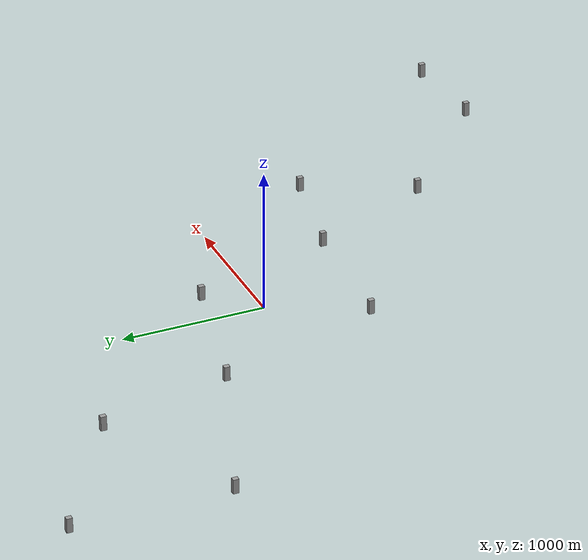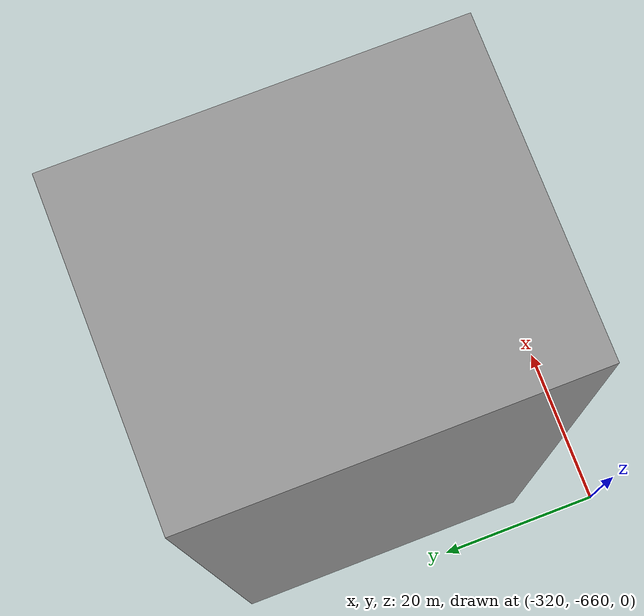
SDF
<sdf version="1.7">
 <world name="default">
  <scene>
   <sky><clouds><speed>12</speed></clouds></sky>
   <ambient>0.95 0.95 0.95 1</ambient>
   <background>0.3 0.3 0.3 1</background>
   <shadows>1</shadows>
  </scene>
  <light name="sun" type="directional">
   <pose>0 0 10 0 -0 0</pose>
   <diffuse>0.8 0.8 0.8 1</diffuse>
   <specular>0.2 0.2 0.2 1</specular>
   <attenuation>
    <range>1000</range>
    <constant>0.9</constant>
    <linear>0.01</linear>
    <quadratic>0.001</quadratic>
   </attenuation>
   <direction>-0.5 0.1 -0.9</direction>
   <spot><inner_angle>0</inner_angle><outer_angle>0</outer_angle><falloff>0</falloff></spot>
  </light>
  <spherical_coordinates>
   <surface_model>EARTH_WGS84</surface_model>
   <latitude_deg>35.7223</latitude_deg>
   <longitude_deg>-120.767</longitude_deg>
   <elevation>280</elevation>
   <heading_deg>0</heading_deg>
  </spherical_coordinates>
  <physics name="default_physics" default="0" type="ode">
   <ode>
    <solver>
     <type>quick</type>
     <iters>10</iters>
     <sor>1.3</sor>
     <use_dynamic_moi_rescaling>0</use_dynamic_moi_rescaling>
    </solver>
    <constraints>
     <cfm>0</cfm>
     <erp>0.2</erp>
     <contact_max_correcting_vel>100</contact_max_correcting_vel>
     <contact_surface_layer>0.001</contact_surface_layer>
    </constraints>
   </ode>
   <max_step_size>0.004</max_step_size>
   <real_time_factor>1</real_time_factor>
   <real_time_update_rate>250</real_time_update_rate>
  </physics>
  <gravity>0 0 -9.8066</gravity>
  <magnetic_field>6e-06 2.3e-05 -4.2e-05</magnetic_field>
  <atmosphere type="adiabatic"/>
  <audio><device>default</device></audio>
  <model name="huge_building">
   <link name="link">
    <inertial>
     <mass>137299</mass>
     <inertia>
      <ixx>1.37911e+08</ixx>
      <ixy>0</ixy>
      <ixz>0</ixz>
      <iyy>1.32035e+08</iyy>
      <iyz>0</iyz>
      <izz>3.13216e+07</izz>
     </inertia>
    </inertial>
    <visual name="visual">
     <geometry><box><size>33.3468 40.3177 102.117</size></box></geometry>
     <material>
      <script><name>Gazebo/Grey</name><uri>file://media/materials/scripts/gazebo.material</uri></script>
      <shader type="pixel"/>
     </material>
    </visual>
    <collision name="collision">
     <geometry><box><size>33.3468 40.3177 102.117</size></box></geometry>
     <surface>
      <friction>
       <ode><mu>1</mu><mu2>1</mu2><fdir1>0 0 0</fdir1><slip1>0</slip1><slip2>0</slip2></ode>
       <torsional>
        <coefficient>1</coefficient>
        <patch_radius>0</patch_radius>
        <surface_radius>0</surface_radius>
        <use_patch_radius>1</use_patch_radius>
        <ode><slip>0</slip></ode>
       </torsional>
      </friction>
      <bounce><restitution_coefficient>0</restitution_coefficient><threshold>1e+06</threshold></bounce>
      <contact>
       <collide_without_contact>0</collide_without_contact>
       <collide_without_contact_bitmask>1</collide_without_contact_bitmask>
       <collide_bitmask>1</collide_bitmask>
       <ode>
        <soft_cfm>0</soft_cfm>
        <soft_erp>0.2</soft_erp>
        <kp>1e+13</kp>
        <kd>1</kd>
        <max_vel>0.01</max_vel>
        <min_depth>0</min_depth>
       </ode>
       <bullet>
        <split_impulse>1</split_impulse>
        <split_impulse_penetration_threshold>-0.01</split_impulse_penetration_threshold>
        <soft_cfm>0</soft_cfm>
        <soft_erp>0.2</soft_erp>
        <kp>1e+13</kp>
        <kd>1</kd>
       </bullet>
      </contact>
     </surface>
    </collision>
   </link>
   <static>0</static>
   <pose>2573.26 -2347.73 0.5 0 -0 0</pose>
  </model>
  <model name="huge_building_0">
   <link name="link">
    <inertial>
     <mass>137299</mass>
     <inertia>
      <ixx>1.37911e+08</ixx>
      <ixy>0</ixy>
      <ixz>0</ixz>
      <iyy>1.32035e+08</iyy>
      <iyz>0</iyz>
      <izz>3.13216e+07</izz>
     </inertia>
    </inertial>
    <visual name="visual">
     <geometry><box><size>33.3468 40.3177 102.117</size></box></geometry>
     <material>
      <script><name>Gazebo/Grey</name><uri>file://media/materials/scripts/gazebo.material</uri></script>
      <shader type="pixel"/>
     </material>
    </visual>
    <collision name="collision">
     <geometry><box><size>33.3468 40.3177 102.117</size></box></geometry>
     <surface>
      <friction>
       <ode><mu>1</mu><mu2>1</mu2><fdir1>0 0 0</fdir1><slip1>0</slip1><slip2>0</slip2></ode>
       <torsional>
        <coefficient>1</coefficient>
        <patch_radius>0</patch_radius>
        <surface_radius>0</surface_radius>
        <use_patch_radius>1</use_patch_radius>
        <ode><slip>0</slip></ode>
       </torsional>
      </friction>
      <bounce><restitution_coefficient>0</restitution_coefficient><threshold>1e+06</threshold></bounce>
      <contact>
       <collide_without_contact>0</collide_without_contact>
       <collide_without_contact_bitmask>1</collide_without_contact_bitmask>
       <collide_bitmask>1</collide_bitmask>
       <ode>
        <soft_cfm>0</soft_cfm>
        <soft_erp>0.2</soft_erp>
        <kp>1e+13</kp>
        <kd>1</kd>
        <max_vel>0.01</max_vel>
        <min_depth>0</min_depth>
       </ode>
       <bullet>
        <split_impulse>1</split_impulse>
        <split_impulse_penetration_threshold>-0.01</split_impulse_penetration_threshold>
        <soft_cfm>0</soft_cfm>
        <soft_erp>0.2</soft_erp>
        <kp>1e+13</kp>
        <kd>1</kd>
       </bullet>
      </contact>
     </surface>
    </collision>
   </link>
   <static>0</static>
   <pose>1927.83 -2388.05 0 0 -0 0</pose>
  </model>
  <model name="huge_building_1">
   <link name="link">
    <inertial>
     <mass>137299</mass>
     <inertia>
      <ixx>1.37911e+08</ixx>
      <ixy>0</ixy>
      <ixz>0</ixz>
      <iyy>1.32035e+08</iyy>
      <iyz>0</iyz>
      <izz>3.13216e+07</izz>
     </inertia>
    </inertial>
    <visual name="visual">
     <geometry><box><size>33.3468 40.3177 102.117</size></box></geometry>
     <material>
      <script><name>Gazebo/Grey</name><uri>file://media/materials/scripts/gazebo.material</uri></script>
      <shader type="pixel"/>
     </material>
    </visual>
    <collision name="collision">
     <geometry><box><size>33.3468 40.3177 102.117</size></box></geometry>
     <surface>
      <friction>
       <ode><mu>1</mu><mu2>1</mu2><fdir1>0 0 0</fdir1><slip1>0</slip1><slip2>0</slip2></ode>
       <torsional>
        <coefficient>1</coefficient>
        <patch_radius>0</patch_radius>
        <surface_radius>0</surface_radius>
        <use_patch_radius>1</use_patch_radius>
        <ode><slip>0</slip></ode>
       </torsional>
      </friction>
      <bounce><restitution_coefficient>0</restitution_coefficient><threshold>1e+06</threshold></bounce>
      <contact>
       <collide_without_contact>0</collide_without_contact>
       <collide_without_contact_bitmask>1</collide_without_contact_bitmask>
       <collide_bitmask>1</collide_bitmask>
       <ode>
        <soft_cfm>0</soft_cfm>
        <soft_erp>0.2</soft_erp>
        <kp>1e+13</kp>
        <kd>1</kd>
        <max_vel>0.01</max_vel>
        <min_depth>0</min_depth>
       </ode>
       <bullet>
        <split_impulse>1</split_impulse>
        <split_impulse_penetration_threshold>-0.01</split_impulse_penetration_threshold>
        <soft_cfm>0</soft_cfm>
        <soft_erp>0.2</soft_erp>
        <kp>1e+13</kp>
        <kd>1</kd>
       </bullet>
      </contact>
     </surface>
    </collision>
   </link>
   <static>0</static>
   <pose>1025.33 -1589.03 27 0 -0 0</pose>
  </model>
  <model name="huge_building_2">
   <link name="link">
    <inertial>
     <mass>137299</mass>
     <inertia>
      <ixx>1.37911e+08</ixx>
      <ixy>0</ixy>
      <ixz>0</ixz>
      <iyy>1.32035e+08</iyy>
      <iyz>0</iyz>
      <izz>3.13216e+07</izz>
     </inertia>
    </inertial>
    <visual name="visual">
     <geometry><box><size>33.3468 40.3177 102.117</size></box></geometry>
     <material>
      <script><name>Gazebo/Grey</name><uri>file://media/materials/scripts/gazebo.material</uri></script>
      <shader type="pixel"/>
     </material>
    </visual>
    <collision name="collision">
     <geometry><box><size>33.3468 40.3177 102.117</size></box></geometry>
     <surface>
      <friction>
       <ode><mu>1</mu><mu2>1</mu2><fdir1>0 0 0</fdir1><slip1>0</slip1><slip2>0</slip2></ode>
       <torsional>
        <coefficient>1</coefficient>
        <patch_radius>0</patch_radius>
        <surface_radius>0</surface_radius>
        <use_patch_radius>1</use_patch_radius>
        <ode><slip>0</slip></ode>
       </torsional>
      </friction>
      <bounce><restitution_coefficient>0</restitution_coefficient><threshold>1e+06</threshold></bounce>
      <contact>
       <collide_without_contact>0</collide_without_contact>
       <collide_without_contact_bitmask>1</collide_without_contact_bitmask>
       <collide_bitmask>1</collide_bitmask>
       <ode>
        <soft_cfm>0</soft_cfm>
        <soft_erp>0.2</soft_erp>
        <kp>1e+13</kp>
        <kd>1</kd>
        <max_vel>0.01</max_vel>
        <min_depth>0</min_depth>
       </ode>
       <bullet>
        <split_impulse>1</split_impulse>
        <split_impulse_penetration_threshold>-0.01</split_impulse_penetration_threshold>
        <soft_cfm>0</soft_cfm>
        <soft_erp>0.2</soft_erp>
        <kp>1e+13</kp>
        <kd>1</kd>
       </bullet>
      </contact>
     </surface>
    </collision>
   </link>
   <static>0</static>
   <pose>1380.82 -867.37 23 0 -0 0</pose>
  </model>
  <model name="huge_building_3">
   <link name="link">
    <inertial>
     <mass>137299</mass>
     <inertia>
      <ixx>1.37911e+08</ixx>
      <ixy>0</ixy>
      <ixz>0</ixz>
      <iyy>1.32035e+08</iyy>
      <iyz>0</iyz>
      <izz>3.13216e+07</izz>
     </inertia>
    </inertial>
    <visual name="visual">
     <geometry><box><size>33.3468 40.3177 102.117</size></box></geometry>
     <material>
      <script><name>Gazebo/Grey</name><uri>file://media/materials/scripts/gazebo.material</uri></script>
      <shader type="pixel"/>
     </material>
    </visual>
    <collision name="collision">
     <geometry><box><size>33.3468 40.3177 102.117</size></box></geometry>
     <surface>
      <friction>
       <ode><mu>1</mu><mu2>1</mu2><fdir1>0 0 0</fdir1><slip1>0</slip1><slip2>0</slip2></ode>
       <torsional>
        <coefficient>1</coefficient>
        <patch_radius>0</patch_radius>
        <surface_radius>0</surface_radius>
        <use_patch_radius>1</use_patch_radius>
        <ode><slip>0</slip></ode>
       </torsional>
      </friction>
      <bounce><restitution_coefficient>0</restitution_coefficient><threshold>1e+06</threshold></bounce>
      <contact>
       <collide_without_contact>0</collide_without_contact>
       <collide_without_contact_bitmask>1</collide_without_contact_bitmask>
       <collide_bitmask>1</collide_bitmask>
       <ode>
        <soft_cfm>0</soft_cfm>
        <soft_erp>0.2</soft_erp>
        <kp>1e+13</kp>
        <kd>1</kd>
        <max_vel>0.01</max_vel>
        <min_depth>0</min_depth>
       </ode>
       <bullet>
        <split_impulse>1</split_impulse>
        <split_impulse_penetration_threshold>-0.01</split_impulse_penetration_threshold>
        <soft_cfm>0</soft_cfm>
        <soft_erp>0.2</soft_erp>
        <kp>1e+13</kp>
        <kd>1</kd>
       </bullet>
      </contact>
     </surface>
    </collision>
   </link>
   <static>0</static>
   <pose>635.531 -705.591 24 0 -0 0</pose>
  </model>
  <model name="huge_building_4">
   <link name="link">
    <inertial>
     <mass>137299</mass>
     <inertia>
      <ixx>1.37911e+08</ixx>
      <ixy>0</ixy>
      <ixz>0</ixz>
      <iyy>1.32035e+08</iyy>
      <iyz>0</iyz>
      <izz>3.13216e+07</izz>
     </inertia>
    </inertial>
    <visual name="visual">
     <geometry><box><size>33.3468 40.3177 102.117</size></box></geometry>
     <material>
      <script><name>Gazebo/Grey</name><uri>file://media/materials/scripts/gazebo.material</uri></script>
      <shader type="pixel"/>
     </material>
    </visual>
    <collision name="collision">
     <geometry><box><size>33.3468 40.3177 102.117</size></box></geometry>
     <surface>
      <friction>
       <ode><mu>1</mu><mu2>1</mu2><fdir1>0 0 0</fdir1><slip1>0</slip1><slip2>0</slip2></ode>
       <torsional>
        <coefficient>1</coefficient>
        <patch_radius>0</patch_radius>
        <surface_radius>0</surface_radius>
        <use_patch_radius>1</use_patch_radius>
        <ode><slip>0</slip></ode>
       </torsional>
      </friction>
      <bounce><restitution_coefficient>0</restitution_coefficient><threshold>1e+06</threshold></bounce>
      <contact>
       <collide_without_contact>0</collide_without_contact>
       <collide_without_contact_bitmask>1</collide_without_contact_bitmask>
       <collide_bitmask>1</collide_bitmask>
       <ode>
        <soft_cfm>0</soft_cfm>
        <soft_erp>0.2</soft_erp>
        <kp>1e+13</kp>
        <kd>1</kd>
        <max_vel>0.01</max_vel>
        <min_depth>0</min_depth>
       </ode>
       <bullet>
        <split_impulse>1</split_impulse>
        <split_impulse_penetration_threshold>-0.01</split_impulse_penetration_threshold>
        <soft_cfm>0</soft_cfm>
        <soft_erp>0.2</soft_erp>
        <kp>1e+13</kp>
        <kd>1</kd>
       </bullet>
      </contact>
     </surface>
    </collision>
   </link>
   <static>0</static>
   <pose>-298.487 -633.428 26 0 -0 0</pose>
  </model>
  <model name="huge_building_5">
   <link name="link">
    <inertial>
     <mass>137299</mass>
     <inertia>
      <ixx>1.37911e+08</ixx>
      <ixy>0</ixy>
      <ixz>0</ixz>
      <iyy>1.32035e+08</iyy>
      <iyz>0</iyz>
      <izz>3.13216e+07</izz>
     </inertia>
    </inertial>
    <visual name="visual">
     <geometry><box><size>33.3468 40.3177 102.117</size></box></geometry>
     <material>
      <script><name>Gazebo/Grey</name><uri>file://media/materials/scripts/gazebo.material</uri></script>
      <shader type="pixel"/>
     </material>
    </visual>
    <collision name="collision">
     <geometry><box><size>33.3468 40.3177 102.117</size></box></geometry>
     <surface>
      <friction>
       <ode><mu>1</mu><mu2>1</mu2><fdir1>0 0 0</fdir1><slip1>0</slip1><slip2>0</slip2></ode>
       <torsional>
        <coefficient>1</coefficient>
        <patch_radius>0</patch_radius>
        <surface_radius>0</surface_radius>
        <use_patch_radius>1</use_patch_radius>
        <ode><slip>0</slip></ode>
       </torsional>
      </friction>
      <bounce><restitution_coefficient>0</restitution_coefficient><threshold>1e+06</threshold></bounce>
      <contact>
       <collide_without_contact>0</collide_without_contact>
       <collide_without_contact_bitmask>1</collide_without_contact_bitmask>
       <collide_bitmask>1</collide_bitmask>
       <ode>
        <soft_cfm>0</soft_cfm>
        <soft_erp>0.2</soft_erp>
        <kp>1e+13</kp>
        <kd>1</kd>
        <max_vel>0.01</max_vel>
        <min_depth>0</min_depth>
       </ode>
       <bullet>
        <split_impulse>1</split_impulse>
        <split_impulse_penetration_threshold>-0.01</split_impulse_penetration_threshold>
        <soft_cfm>0</soft_cfm>
        <soft_erp>0.2</soft_erp>
        <kp>1e+13</kp>
        <kd>1</kd>
       </bullet>
      </contact>
     </surface>
    </collision>
   </link>
   <static>0</static>
   <pose>229.243 349.063 77 0 -0 0</pose>
  </model>
  <model name="huge_building_6">
   <link name="link">
    <inertial>
     <mass>137299</mass>
     <inertia>
      <ixx>1.37911e+08</ixx>
      <ixy>0</ixy>
      <ixz>0</ixz>
      <iyy>1.32035e+08</iyy>
      <iyz>0</iyz>
      <izz>3.13216e+07</izz>
     </inertia>
    </inertial>
    <visual name="visual">
     <geometry><box><size>33.3468 40.3177 102.117</size></box></geometry>
     <material>
      <script><name>Gazebo/Grey</name><uri>file://media/materials/scripts/gazebo.material</uri></script>
      <shader type="pixel"/>
     </material>
    </visual>
    <collision name="collision">
     <geometry><box><size>33.3468 40.3177 102.117</size></box></geometry>
     <surface>
      <friction>
       <ode><mu>1</mu><mu2>1</mu2><fdir1>0 0 0</fdir1><slip1>0</slip1><slip2>0</slip2></ode>
       <torsional>
        <coefficient>1</coefficient>
        <patch_radius>0</patch_radius>
        <surface_radius>0</surface_radius>
        <use_patch_radius>1</use_patch_radius>
        <ode><slip>0</slip></ode>
       </torsional>
      </friction>
      <bounce><restitution_coefficient>0</restitution_coefficient><threshold>1e+06</threshold></bounce>
      <contact>
       <collide_without_contact>0</collide_without_contact>
       <collide_without_contact_bitmask>1</collide_without_contact_bitmask>
       <collide_bitmask>1</collide_bitmask>
       <ode>
        <soft_cfm>0</soft_cfm>
        <soft_erp>0.2</soft_erp>
        <kp>1e+13</kp>
        <kd>1</kd>
        <max_vel>0.01</max_vel>
        <min_depth>0</min_depth>
       </ode>
       <bullet>
        <split_impulse>1</split_impulse>
        <split_impulse_penetration_threshold>-0.01</split_impulse_penetration_threshold>
        <soft_cfm>0</soft_cfm>
        <soft_erp>0.2</soft_erp>
        <kp>1e+13</kp>
        <kd>1</kd>
       </bullet>
      </contact>
     </surface>
    </collision>
   </link>
   <static>0</static>
   <pose>-684.921 559.523 29 0 -0 0</pose>
  </model>
  <model name="huge_building_7">
   <link name="link">
    <inertial>
     <mass>137299</mass>
     <inertia>
      <ixx>1.37911e+08</ixx>
      <ixy>0</ixy>
      <ixz>0</ixz>
      <iyy>1.32035e+08</iyy>
      <iyz>0</iyz>
      <izz>3.13216e+07</izz>
     </inertia>
    </inertial>
    <visual name="visual">
     <geometry><box><size>33.3468 40.3177 102.117</size></box></geometry>
     <material>
      <script><name>Gazebo/Grey</name><uri>file://media/materials/scripts/gazebo.material</uri></script>
      <shader type="pixel"/>
     </material>
    </visual>
    <collision name="collision">
     <geometry><box><size>33.3468 40.3177 102.117</size></box></geometry>
     <surface>
      <friction>
       <ode><mu>1</mu><mu2>1</mu2><fdir1>0 0 0</fdir1><slip1>0</slip1><slip2>0</slip2></ode>
       <torsional>
        <coefficient>1</coefficient>
        <patch_radius>0</patch_radius>
        <surface_radius>0</surface_radius>
        <use_patch_radius>1</use_patch_radius>
        <ode><slip>0</slip></ode>
       </torsional>
      </friction>
      <bounce><restitution_coefficient>0</restitution_coefficient><threshold>1e+06</threshold></bounce>
      <contact>
       <collide_without_contact>0</collide_without_contact>
       <collide_without_contact_bitmask>1</collide_without_contact_bitmask>
       <collide_bitmask>1</collide_bitmask>
       <ode>
        <soft_cfm>0</soft_cfm>
        <soft_erp>0.2</soft_erp>
        <kp>1e+13</kp>
        <kd>1</kd>
        <max_vel>0.01</max_vel>
        <min_depth>0</min_depth>
       </ode>
       <bullet>
        <split_impulse>1</split_impulse>
        <split_impulse_penetration_threshold>-0.01</split_impulse_penetration_threshold>
        <soft_cfm>0</soft_cfm>
        <soft_erp>0.2</soft_erp>
        <kp>1e+13</kp>
        <kd>1</kd>
       </bullet>
      </contact>
     </surface>
    </collision>
   </link>
   <static>0</static>
   <pose>-961.829 1519.98 59 0 -0 0</pose>
  </model>
  <model name="huge_building_8">
   <link name="link">
    <inertial>
     <mass>137299</mass>
     <inertia>
      <ixx>1.37911e+08</ixx>
      <ixy>0</ixy>
      <ixz>0</ixz>
      <iyy>1.32035e+08</iyy>
      <iyz>0</iyz>
      <izz>3.13216e+07</izz>
     </inertia>
    </inertial>
    <visual name="visual">
     <geometry><box><size>33.3468 40.3177 102.117</size></box></geometry>
     <material>
      <script><name>Gazebo/Grey</name><uri>file://media/materials/scripts/gazebo.material</uri></script>
      <shader type="pixel"/>
     </material>
    </visual>
    <collision name="collision">
     <geometry><box><size>33.3468 40.3177 102.117</size></box></geometry>
     <surface>
      <friction>
       <ode><mu>1</mu><mu2>1</mu2><fdir1>0 0 0</fdir1><slip1>0</slip1><slip2>0</slip2></ode>
       <torsional>
        <coefficient>1</coefficient>
        <patch_radius>0</patch_radius>
        <surface_radius>0</surface_radius>
        <use_patch_radius>1</use_patch_radius>
        <ode><slip>0</slip></ode>
       </torsional>
      </friction>
      <bounce><restitution_coefficient>0</restitution_coefficient><threshold>1e+06</threshold></bounce>
      <contact>
       <collide_without_contact>0</collide_without_contact>
       <collide_without_contact_bitmask>1</collide_without_contact_bitmask>
       <collide_bitmask>1</collide_bitmask>
       <ode>
        <soft_cfm>0</soft_cfm>
        <soft_erp>0.2</soft_erp>
        <kp>1e+13</kp>
        <kd>1</kd>
        <max_vel>0.01</max_vel>
        <min_depth>0</min_depth>
       </ode>
       <bullet>
        <split_impulse>1</split_impulse>
        <split_impulse_penetration_threshold>-0.01</split_impulse_penetration_threshold>
        <soft_cfm>0</soft_cfm>
        <soft_erp>0.2</soft_erp>
        <kp>1e+13</kp>
        <kd>1</kd>
       </bullet>
      </contact>
     </surface>
    </collision>
   </link>
   <static>0</static>
   <pose>-1923.22 1028.99 36 0 -0 0</pose>
  </model>
  <model name="huge_building_9">
   <link name="link">
    <inertial>
     <mass>137299</mass>
     <inertia>
      <ixx>1.37911e+08</ixx>
      <ixy>0</ixy>
      <ixz>0</ixz>
      <iyy>1.32035e+08</iyy>
      <iyz>0</iyz>
      <izz>3.13216e+07</izz>
     </inertia>
    </inertial>
    <visual name="visual">
     <geometry><box><size>33.3468 40.3177 102.117</size></box></geometry>
     <material>
      <script><name>Gazebo/Grey</name><uri>file://media/materials/scripts/gazebo.material</uri></script>
      <shader type="pixel"/>
     </material>
    </visual>
    <collision name="collision">
     <geometry><box><size>33.3468 40.3177 102.117</size></box></geometry>
     <surface>
      <friction>
       <ode><mu>1</mu><mu2>1</mu2><fdir1>0 0 0</fdir1><slip1>0</slip1><slip2>0</slip2></ode>
       <torsional>
        <coefficient>1</coefficient>
        <patch_radius>0</patch_radius>
        <surface_radius>0</surface_radius>
        <use_patch_radius>1</use_patch_radius>
        <ode><slip>0</slip></ode>
       </torsional>
      </friction>
      <bounce><restitution_coefficient>0</restitution_coefficient><threshold>1e+06</threshold></bounce>
      <contact>
       <collide_without_contact>0</collide_without_contact>
       <collide_without_contact_bitmask>1</collide_without_contact_bitmask>
       <collide_bitmask>1</collide_bitmask>
       <ode>
        <soft_cfm>0</soft_cfm>
        <soft_erp>0.2</soft_erp>
        <kp>1e+13</kp>
        <kd>1</kd>
        <max_vel>0.01</max_vel>
        <min_depth>0</min_depth>
       </ode>
       <bullet>
        <split_impulse>1</split_impulse>
        <split_impulse_penetration_threshold>-0.01</split_impulse_penetration_threshold>
        <soft_cfm>0</soft_cfm>
        <soft_erp>0.2</soft_erp>
        <kp>1e+13</kp>
        <kd>1</kd>
       </bullet>
      </contact>
     </surface>
    </collision>
   </link>
   <static>0</static>
   <pose>-1864.15 2105.7 0 0 -0 0</pose>
  </model>
 </world>
</sdf>
